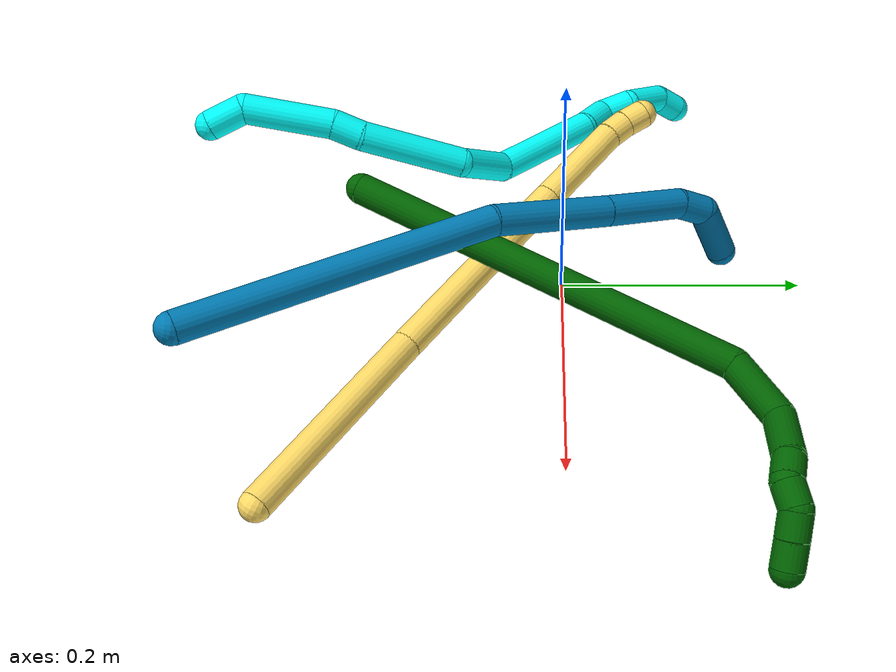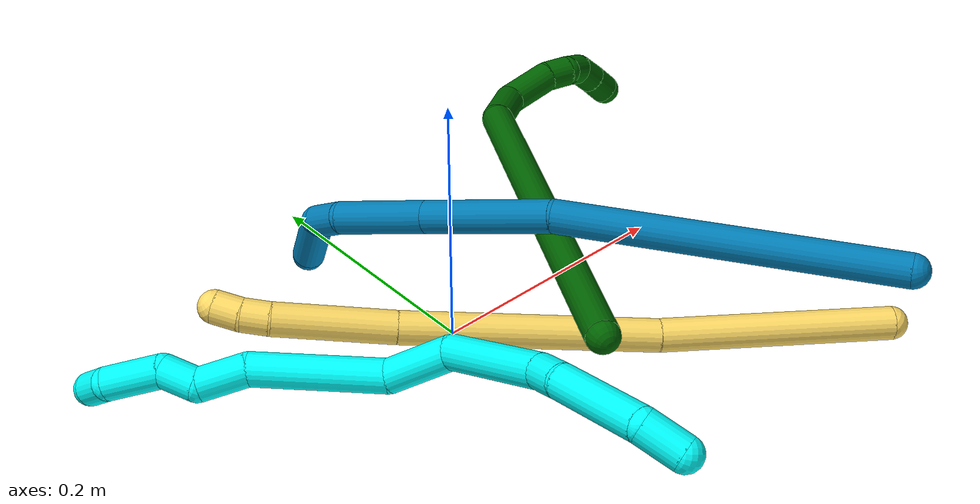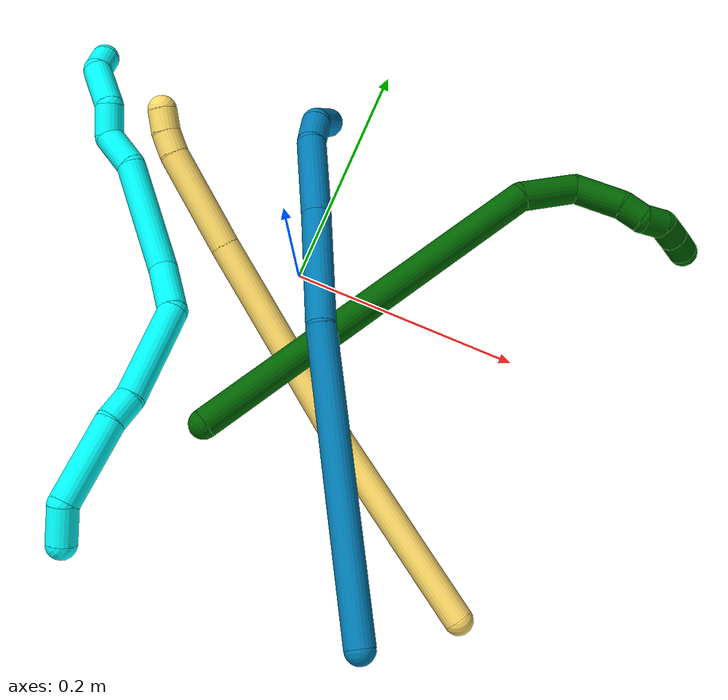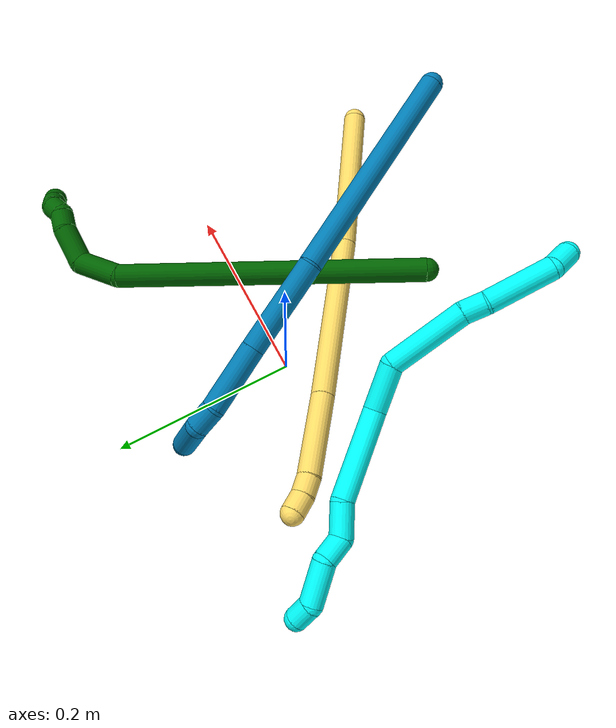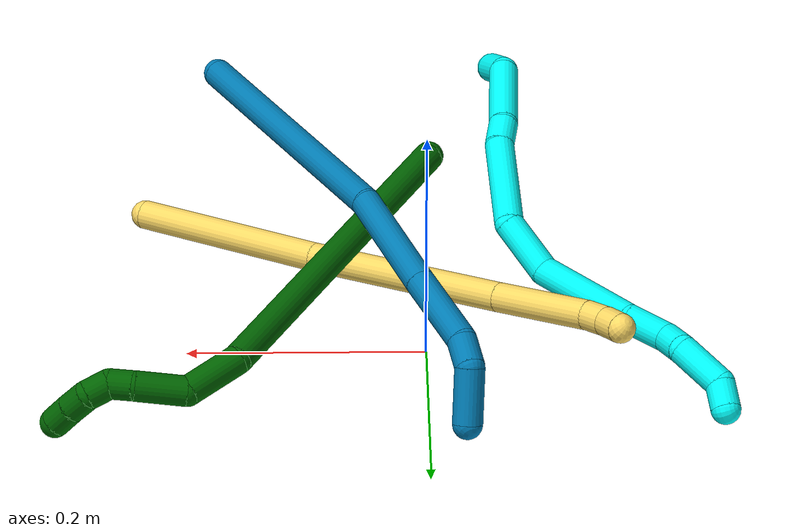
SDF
<sdf version="1.7">
 <world name="default">
  <model name="3">
   <static>0</static>
   <link name="3">
    <collision name="collision-cylinder-e_1_1_4">
     <pose>0.00138 0.011677 0.009816 -0.871752 0.090233 -0.042049</pose>
     <geometry><cylinder><radius>0.0125</radius><length>0.030634</length></cylinder></geometry>
     <surface>
      <friction><ode><mu>1.16</mu><mu2>1.16</mu2><slip1>0</slip1><slip2>0</slip2></ode></friction>
      <contact><ode><kp>1e+06</kp><kd>1</kd><max_vel>0</max_vel><min_depth>0.001</min_depth></ode></contact>
     </surface>
    </collision>
    <visual name="visual-cylinder-e_1_1_4">
     <pose>0.00138 0.011677 0.009816 -0.871752 0.090233 -0.042049</pose>
     <geometry><cylinder><radius>0.0125</radius><length>0.030634</length></cylinder></geometry>
     <material><ambient>0.003922 1 0.996078 1</ambient></material>
    </visual>
    <collision name="collision-cylinder-e_2_4_5">
     <pose>-0.007136 0.058299 0.025647 -1.40036 -0.272158 0.229728</pose>
     <geometry><cylinder><radius>0.0125</radius><length>0.073629</length></cylinder></geometry>
     <surface>
      <friction><ode><mu>1.16</mu><mu2>1.16</mu2><slip1>0</slip1><slip2>0</slip2></ode></friction>
      <contact><ode><kp>1e+06</kp><kd>1</kd><max_vel>0</max_vel><min_depth>0.001</min_depth></ode></contact>
     </surface>
    </collision>
    <visual name="visual-cylinder-e_2_4_5">
     <pose>-0.007136 0.058299 0.025647 -1.40036 -0.272158 0.229728</pose>
     <geometry><cylinder><radius>0.0125</radius><length>0.073629</length></cylinder></geometry>
     <material><ambient>0.003922 1 0.996078 1</ambient></material>
    </visual>
    <collision name="collision-cylinder-e_3_5_6">
     <pose>-0.021584 0.104878 0.031255 -1.60569 -0.37279 0.38571</pose>
     <geometry><cylinder><radius>0.0125</radius><length>0.024997</length></cylinder></geometry>
     <surface>
      <friction><ode><mu>1.16</mu><mu2>1.16</mu2><slip1>0</slip1><slip2>0</slip2></ode></friction>
      <contact><ode><kp>1e+06</kp><kd>1</kd><max_vel>0</max_vel><min_depth>0.001</min_depth></ode></contact>
     </surface>
    </collision>
    <visual name="visual-cylinder-e_3_5_6">
     <pose>-0.021584 0.104878 0.031255 -1.60569 -0.37279 0.38571</pose>
     <geometry><cylinder><radius>0.0125</radius><length>0.024997</length></cylinder></geometry>
     <material><ambient>0.003922 1 0.996078 1</ambient></material>
    </visual>
    <collision name="collision-cylinder-e_4_6_7">
     <pose>-0.04642 0.154828 0.038142 -1.38273 -0.479533 0.399272</pose>
     <geometry><cylinder><radius>0.0125</radius><length>0.087928</length></cylinder></geometry>
     <surface>
      <friction><ode><mu>1.16</mu><mu2>1.16</mu2><slip1>0</slip1><slip2>0</slip2></ode></friction>
      <contact><ode><kp>1e+06</kp><kd>1</kd><max_vel>0</max_vel><min_depth>0.001</min_depth></ode></contact>
     </surface>
    </collision>
    <visual name="visual-cylinder-e_4_6_7">
     <pose>-0.04642 0.154828 0.038142 -1.38273 -0.479533 0.399272</pose>
     <geometry><cylinder><radius>0.0125</radius><length>0.087928</length></cylinder></geometry>
     <material><ambient>0.003922 1 0.996078 1</ambient></material>
    </visual>
    <collision name="collision-cylinder-e_5_7_8">
     <pose>-0.086307 0.205142 0.057216 -0.794406 -0.861825 0.381032</pose>
     <geometry><cylinder><radius>0.0125</radius><length>0.051654</length></cylinder></geometry>
     <surface>
      <friction><ode><mu>1.16</mu><mu2>1.16</mu2><slip1>0</slip1><slip2>0</slip2></ode></friction>
      <contact><ode><kp>1e+06</kp><kd>1</kd><max_vel>0</max_vel><min_depth>0.001</min_depth></ode></contact>
     </surface>
    </collision>
    <visual name="visual-cylinder-e_5_7_8">
     <pose>-0.086307 0.205142 0.057216 -0.794406 -0.861825 0.381032</pose>
     <geometry><cylinder><radius>0.0125</radius><length>0.051654</length></cylinder></geometry>
     <material><ambient>0.003922 1 0.996078 1</ambient></material>
    </visual>
    <collision name="collision-cylinder-e_6_8_9">
     <pose>-0.124092 0.24296 0.10725 -0.593778 -0.375295 0.116051</pose>
     <geometry><cylinder><radius>0.0125</radius><length>0.099206</length></cylinder></geometry>
     <surface>
      <friction><ode><mu>1.16</mu><mu2>1.16</mu2><slip1>0</slip1><slip2>0</slip2></ode></friction>
      <contact><ode><kp>1e+06</kp><kd>1</kd><max_vel>0</max_vel><min_depth>0.001</min_depth></ode></contact>
     </surface>
    </collision>
    <visual name="visual-cylinder-e_6_8_9">
     <pose>-0.124092 0.24296 0.10725 -0.593778 -0.375295 0.116051</pose>
     <geometry><cylinder><radius>0.0125</radius><length>0.099206</length></cylinder></geometry>
     <material><ambient>0.003922 1 0.996078 1</ambient></material>
    </visual>
    <collision name="collision-cylinder-e_7_9_10">
     <pose>-0.152969 0.272827 0.159847 -0.27485 -0.622349 0.0889</pose>
     <geometry><cylinder><radius>0.0125</radius><length>0.036692</length></cylinder></geometry>
     <surface>
      <friction><ode><mu>1.16</mu><mu2>1.16</mu2><slip1>0</slip1><slip2>0</slip2></ode></friction>
      <contact><ode><kp>1e+06</kp><kd>1</kd><max_vel>0</max_vel><min_depth>0.001</min_depth></ode></contact>
     </surface>
    </collision>
    <visual name="visual-cylinder-e_7_9_10">
     <pose>-0.152969 0.272827 0.159847 -0.27485 -0.622349 0.0889</pose>
     <geometry><cylinder><radius>0.0125</radius><length>0.036692</length></cylinder></geometry>
     <material><ambient>0.003922 1 0.996078 1</ambient></material>
    </visual>
    <collision name="collision-cylinder-e_8_10_11">
     <pose>-0.165557 0.287205 0.183178 -0.855107 -0.13744 0.062705</pose>
     <geometry><cylinder><radius>0.0125</radius><length>0.027644</length></cylinder></geometry>
     <surface>
      <friction><ode><mu>1.16</mu><mu2>1.16</mu2><slip1>0</slip1><slip2>0</slip2></ode></friction>
      <contact><ode><kp>1e+06</kp><kd>1</kd><max_vel>0</max_vel><min_depth>0.001</min_depth></ode></contact>
     </surface>
    </collision>
    <visual name="visual-cylinder-e_8_10_11">
     <pose>-0.165557 0.287205 0.183178 -0.855107 -0.13744 0.062705</pose>
     <geometry><cylinder><radius>0.0125</radius><length>0.027644</length></cylinder></geometry>
     <material><ambient>0.003922 1 0.996078 1</ambient></material>
    </visual>
    <collision name="collision-cylinder-e_9_11_12">
     <pose>-0.181473 0.307749 0.206148 -0.630641 -0.680632 0.229994</pose>
     <geometry><cylinder><radius>0.0125</radius><length>0.044566</length></cylinder></geometry>
     <surface>
      <friction><ode><mu>1.16</mu><mu2>1.16</mu2><slip1>0</slip1><slip2>0</slip2></ode></friction>
      <contact><ode><kp>1e+06</kp><kd>1</kd><max_vel>0</max_vel><min_depth>0.001</min_depth></ode></contact>
     </surface>
    </collision>
    <visual name="visual-cylinder-e_9_11_12">
     <pose>-0.181473 0.307749 0.206148 -0.630641 -0.680632 0.229994</pose>
     <geometry><cylinder><radius>0.0125</radius><length>0.044566</length></cylinder></geometry>
     <material><ambient>0.003922 1 0.996078 1</ambient></material>
    </visual>
    <collision name="collision-cylinder-e_10_12_2">
     <pose>-0.203686 0.325961 0.221452 -1.40761 -0.790422 0.680629</pose>
     <geometry><cylinder><radius>0.0125</radius><length>0.02305</length></cylinder></geometry>
     <surface>
      <friction><ode><mu>1.16</mu><mu2>1.16</mu2><slip1>0</slip1><slip2>0</slip2></ode></friction>
      <contact><ode><kp>1e+06</kp><kd>1</kd><max_vel>0</max_vel><min_depth>0.001</min_depth></ode></contact>
     </surface>
    </collision>
    <visual name="visual-cylinder-e_10_12_2">
     <pose>-0.203686 0.325961 0.221452 -1.40761 -0.790422 0.680629</pose>
     <geometry><cylinder><radius>0.0125</radius><length>0.02305</length></cylinder></geometry>
     <material><ambient>0.003922 1 0.996078 1</ambient></material>
    </visual>
    <collision name="collision-sphere-2">
     <pose>-0.211876 0.333962 0.22277 0 -0 0</pose>
     <geometry><sphere><radius>0.0125</radius></sphere></geometry>
     <surface>
      <friction><ode><mu>1.16</mu><mu2>1.16</mu2><slip1>0</slip1><slip2>0</slip2></ode></friction>
      <contact><ode><kp>1e+06</kp><kd>1</kd><max_vel>0</max_vel><min_depth>0.001</min_depth></ode></contact>
     </surface>
    </collision>
    <visual name="visual-sphere-2">
     <pose>-0.211876 0.333962 0.22277 0 -0 0</pose>
     <geometry><sphere><radius>0.0125</radius></sphere></geometry>
     <material><ambient>0.003922 1 0.996078 1</ambient></material>
    </visual>
    <collision name="collision-sphere-12">
     <pose>-0.195495 0.31796 0.220135 0 -0 0</pose>
     <geometry><sphere><radius>0.0125</radius></sphere></geometry>
     <surface>
      <friction><ode><mu>1.16</mu><mu2>1.16</mu2><slip1>0</slip1><slip2>0</slip2></ode></friction>
      <contact><ode><kp>1e+06</kp><kd>1</kd><max_vel>0</max_vel><min_depth>0.001</min_depth></ode></contact>
     </surface>
    </collision>
    <visual name="visual-sphere-12">
     <pose>-0.195495 0.31796 0.220135 0 -0 0</pose>
     <geometry><sphere><radius>0.0125</radius></sphere></geometry>
     <material><ambient>0.003922 1 0.996078 1</ambient></material>
    </visual>
    <collision name="collision-sphere-11">
     <pose>-0.167451 0.297537 0.192162 0 -0 0</pose>
     <geometry><sphere><radius>0.0125</radius></sphere></geometry>
     <surface>
      <friction><ode><mu>1.16</mu><mu2>1.16</mu2><slip1>0</slip1><slip2>0</slip2></ode></friction>
      <contact><ode><kp>1e+06</kp><kd>1</kd><max_vel>0</max_vel><min_depth>0.001</min_depth></ode></contact>
     </surface>
    </collision>
    <visual name="visual-sphere-11">
     <pose>-0.167451 0.297537 0.192162 0 -0 0</pose>
     <geometry><sphere><radius>0.0125</radius></sphere></geometry>
     <material><ambient>0.003922 1 0.996078 1</ambient></material>
    </visual>
    <collision name="collision-sphere-10">
     <pose>-0.163663 0.276872 0.174194 0 -0 0</pose>
     <geometry><sphere><radius>0.0125</radius></sphere></geometry>
     <surface>
      <friction><ode><mu>1.16</mu><mu2>1.16</mu2><slip1>0</slip1><slip2>0</slip2></ode></friction>
      <contact><ode><kp>1e+06</kp><kd>1</kd><max_vel>0</max_vel><min_depth>0.001</min_depth></ode></contact>
     </surface>
    </collision>
    <visual name="visual-sphere-10">
     <pose>-0.163663 0.276872 0.174194 0 -0 0</pose>
     <geometry><sphere><radius>0.0125</radius></sphere></geometry>
     <material><ambient>0.003922 1 0.996078 1</ambient></material>
    </visual>
    <collision name="collision-sphere-9">
     <pose>-0.142274 0.268781 0.1455 0 -0 0</pose>
     <geometry><sphere><radius>0.0125</radius></sphere></geometry>
     <surface>
      <friction><ode><mu>1.16</mu><mu2>1.16</mu2><slip1>0</slip1><slip2>0</slip2></ode></friction>
      <contact><ode><kp>1e+06</kp><kd>1</kd><max_vel>0</max_vel><min_depth>0.001</min_depth></ode></contact>
     </surface>
    </collision>
    <visual name="visual-sphere-9">
     <pose>-0.142274 0.268781 0.1455 0 -0 0</pose>
     <geometry><sphere><radius>0.0125</radius></sphere></geometry>
     <material><ambient>0.003922 1 0.996078 1</ambient></material>
    </visual>
    <collision name="collision-sphere-4">
     <pose>0.00276 0.023353 0.019632 0 -0 0</pose>
     <geometry><sphere><radius>0.0125</radius></sphere></geometry>
     <surface>
      <friction><ode><mu>1.16</mu><mu2>1.16</mu2><slip1>0</slip1><slip2>0</slip2></ode></friction>
      <contact><ode><kp>1e+06</kp><kd>1</kd><max_vel>0</max_vel><min_depth>0.001</min_depth></ode></contact>
     </surface>
    </collision>
    <visual name="visual-sphere-4">
     <pose>0.00276 0.023353 0.019632 0 -0 0</pose>
     <geometry><sphere><radius>0.0125</radius></sphere></geometry>
     <material><ambient>0.003922 1 0.996078 1</ambient></material>
    </visual>
    <collision name="collision-sphere-1">
     <geometry><sphere><radius>0.0125</radius></sphere></geometry>
     <surface>
      <friction><ode><mu>1.16</mu><mu2>1.16</mu2><slip1>0</slip1><slip2>0</slip2></ode></friction>
      <contact><ode><kp>1e+06</kp><kd>1</kd><max_vel>0</max_vel><min_depth>0.001</min_depth></ode></contact>
     </surface>
    </collision>
    <visual name="visual-sphere-1">
     <geometry><sphere><radius>0.0125</radius></sphere></geometry>
     <material><ambient>0.003922 1 0.996078 1</ambient></material>
    </visual>
    <collision name="collision-sphere-8">
     <pose>-0.10591 0.217139 0.068999 0 -0 0</pose>
     <geometry><sphere><radius>0.0125</radius></sphere></geometry>
     <surface>
      <friction><ode><mu>1.16</mu><mu2>1.16</mu2><slip1>0</slip1><slip2>0</slip2></ode></friction>
      <contact><ode><kp>1e+06</kp><kd>1</kd><max_vel>0</max_vel><min_depth>0.001</min_depth></ode></contact>
     </surface>
    </collision>
    <visual name="visual-sphere-8">
     <pose>-0.10591 0.217139 0.068999 0 -0 0</pose>
     <geometry><sphere><radius>0.0125</radius></sphere></geometry>
     <material><ambient>0.003922 1 0.996078 1</ambient></material>
    </visual>
    <collision name="collision-sphere-5">
     <pose>-0.017032 0.093245 0.031661 0 -0 0</pose>
     <geometry><sphere><radius>0.0125</radius></sphere></geometry>
     <surface>
      <friction><ode><mu>1.16</mu><mu2>1.16</mu2><slip1>0</slip1><slip2>0</slip2></ode></friction>
      <contact><ode><kp>1e+06</kp><kd>1</kd><max_vel>0</max_vel><min_depth>0.001</min_depth></ode></contact>
     </surface>
    </collision>
    <visual name="visual-sphere-5">
     <pose>-0.017032 0.093245 0.031661 0 -0 0</pose>
     <geometry><sphere><radius>0.0125</radius></sphere></geometry>
     <material><ambient>0.003922 1 0.996078 1</ambient></material>
    </visual>
    <collision name="collision-sphere-6">
     <pose>-0.026136 0.116511 0.030849 0 -0 0</pose>
     <geometry><sphere><radius>0.0125</radius></sphere></geometry>
     <surface>
      <friction><ode><mu>1.16</mu><mu2>1.16</mu2><slip1>0</slip1><slip2>0</slip2></ode></friction>
      <contact><ode><kp>1e+06</kp><kd>1</kd><max_vel>0</max_vel><min_depth>0.001</min_depth></ode></contact>
     </surface>
    </collision>
    <visual name="visual-sphere-6">
     <pose>-0.026136 0.116511 0.030849 0 -0 0</pose>
     <geometry><sphere><radius>0.0125</radius></sphere></geometry>
     <material><ambient>0.003922 1 0.996078 1</ambient></material>
    </visual>
    <collision name="collision-sphere-7">
     <pose>-0.066703 0.193146 0.045434 0 -0 0</pose>
     <geometry><sphere><radius>0.0125</radius></sphere></geometry>
     <surface>
      <friction><ode><mu>1.16</mu><mu2>1.16</mu2><slip1>0</slip1><slip2>0</slip2></ode></friction>
      <contact><ode><kp>1e+06</kp><kd>1</kd><max_vel>0</max_vel><min_depth>0.001</min_depth></ode></contact>
     </surface>
    </collision>
    <visual name="visual-sphere-7">
     <pose>-0.066703 0.193146 0.045434 0 -0 0</pose>
     <geometry><sphere><radius>0.0125</radius></sphere></geometry>
     <material><ambient>0.003922 1 0.996078 1</ambient></material>
    </visual>
    <inertial>
     <pose>-0.08969 0.189527 0.09028 0 -0 0</pose>
     <mass>0.5</mass>
     <inertia>
      <ixx>0.000219</ixx>
      <ixy>0</ixy>
      <ixz>0</ixz>
      <iyy>0.000203</iyy>
      <iyz>0</iyz>
      <izz>-4.3e-05</izz>
     </inertia>
    </inertial>
   </link>
   <pose>-0.062819 -0.288502 0.120186 -0.020905 -1.16211 -0.27887</pose>
  </model>
  <model name="5">
   <static>0</static>
   <link name="5">
    <collision name="collision-cylinder-e_1_1_4">
     <pose>-0.047016 0.041201 -0.063115 -2.56326 -0.557722 1.53249</pose>
     <geometry><cylinder><radius>0.0125</radius><length>0.177667</length></cylinder></geometry>
     <surface>
      <friction><ode><mu>1.16</mu><mu2>1.16</mu2><slip1>0</slip1><slip2>0</slip2></ode></friction>
      <contact><ode><kp>1e+06</kp><kd>1</kd><max_vel>0</max_vel><min_depth>0.001</min_depth></ode></contact>
     </surface>
    </collision>
    <visual name="visual-cylinder-e_1_1_4">
     <pose>-0.047016 0.041201 -0.063115 -2.56326 -0.557722 1.53249</pose>
     <geometry><cylinder><radius>0.0125</radius><length>0.177667</length></cylinder></geometry>
     <material><ambient>1 0.858824 0.4 1</ambient></material>
    </visual>
    <collision name="collision-cylinder-e_2_4_5">
     <pose>-0.143443 0.12067 -0.198983 -2.65736 -0.541214 1.68681</pose>
     <geometry><cylinder><radius>0.0125</radius><length>0.191823</length></cylinder></geometry>
     <surface>
      <friction><ode><mu>1.16</mu><mu2>1.16</mu2><slip1>0</slip1><slip2>0</slip2></ode></friction>
      <contact><ode><kp>1e+06</kp><kd>1</kd><max_vel>0</max_vel><min_depth>0.001</min_depth></ode></contact>
     </surface>
    </collision>
    <visual name="visual-cylinder-e_2_4_5">
     <pose>-0.143443 0.12067 -0.198983 -2.65736 -0.541214 1.68681</pose>
     <geometry><cylinder><radius>0.0125</radius><length>0.191823</length></cylinder></geometry>
     <material><ambient>1 0.858824 0.4 1</ambient></material>
    </visual>
    <collision name="collision-cylinder-e_3_5_6">
     <pose>-0.215719 0.175521 -0.306708 -2.69881 -0.53359 1.76373</pose>
     <geometry><cylinder><radius>0.0125</radius><length>0.089906</length></cylinder></geometry>
     <surface>
      <friction><ode><mu>1.16</mu><mu2>1.16</mu2><slip1>0</slip1><slip2>0</slip2></ode></friction>
      <contact><ode><kp>1e+06</kp><kd>1</kd><max_vel>0</max_vel><min_depth>0.001</min_depth></ode></contact>
     </surface>
    </collision>
    <visual name="visual-cylinder-e_3_5_6">
     <pose>-0.215719 0.175521 -0.306708 -2.69881 -0.53359 1.76373</pose>
     <geometry><cylinder><radius>0.0125</radius><length>0.089906</length></cylinder></geometry>
     <material><ambient>1 0.858824 0.4 1</ambient></material>
    </visual>
    <collision name="collision-cylinder-e_4_6_7">
     <pose>-0.244637 0.194617 -0.349448 -2.82873 -0.638009 2.25058</pose>
     <geometry><cylinder><radius>0.0125</radius><length>0.02033</length></cylinder></geometry>
     <surface>
      <friction><ode><mu>1.16</mu><mu2>1.16</mu2><slip1>0</slip1><slip2>0</slip2></ode></friction>
      <contact><ode><kp>1e+06</kp><kd>1</kd><max_vel>0</max_vel><min_depth>0.001</min_depth></ode></contact>
     </surface>
    </collision>
    <visual name="visual-cylinder-e_4_6_7">
     <pose>-0.244637 0.194617 -0.349448 -2.82873 -0.638009 2.25058</pose>
     <geometry><cylinder><radius>0.0125</radius><length>0.02033</length></cylinder></geometry>
     <material><ambient>1 0.858824 0.4 1</ambient></material>
    </visual>
    <collision name="collision-cylinder-e_5_7_2">
     <pose>-0.257181 0.197772 -0.364978 -3.05913 -0.694738 2.91469</pose>
     <geometry><cylinder><radius>0.0125</radius><length>0.020274</length></cylinder></geometry>
     <surface>
      <friction><ode><mu>1.16</mu><mu2>1.16</mu2><slip1>0</slip1><slip2>0</slip2></ode></friction>
      <contact><ode><kp>1e+06</kp><kd>1</kd><max_vel>0</max_vel><min_depth>0.001</min_depth></ode></contact>
     </surface>
    </collision>
    <visual name="visual-cylinder-e_5_7_2">
     <pose>-0.257181 0.197772 -0.364978 -3.05913 -0.694738 2.91469</pose>
     <geometry><cylinder><radius>0.0125</radius><length>0.020274</length></cylinder></geometry>
     <material><ambient>1 0.858824 0.4 1</ambient></material>
    </visual>
    <collision name="collision-sphere-2">
     <pose>-0.26367 0.198413 -0.372739 0 -0 0</pose>
     <geometry><sphere><radius>0.0125</radius></sphere></geometry>
     <surface>
      <friction><ode><mu>1.16</mu><mu2>1.16</mu2><slip1>0</slip1><slip2>0</slip2></ode></friction>
      <contact><ode><kp>1e+06</kp><kd>1</kd><max_vel>0</max_vel><min_depth>0.001</min_depth></ode></contact>
     </surface>
    </collision>
    <visual name="visual-sphere-2">
     <pose>-0.26367 0.198413 -0.372739 0 -0 0</pose>
     <geometry><sphere><radius>0.0125</radius></sphere></geometry>
     <material><ambient>1 0.858824 0.4 1</ambient></material>
    </visual>
    <collision name="collision-sphere-7">
     <pose>-0.250691 0.19713 -0.357217 0 -0 0</pose>
     <geometry><sphere><radius>0.0125</radius></sphere></geometry>
     <surface>
      <friction><ode><mu>1.16</mu><mu2>1.16</mu2><slip1>0</slip1><slip2>0</slip2></ode></friction>
      <contact><ode><kp>1e+06</kp><kd>1</kd><max_vel>0</max_vel><min_depth>0.001</min_depth></ode></contact>
     </surface>
    </collision>
    <visual name="visual-sphere-7">
     <pose>-0.250691 0.19713 -0.357217 0 -0 0</pose>
     <geometry><sphere><radius>0.0125</radius></sphere></geometry>
     <material><ambient>1 0.858824 0.4 1</ambient></material>
    </visual>
    <collision name="collision-sphere-6">
     <pose>-0.238583 0.192104 -0.341679 0 -0 0</pose>
     <geometry><sphere><radius>0.0125</radius></sphere></geometry>
     <surface>
      <friction><ode><mu>1.16</mu><mu2>1.16</mu2><slip1>0</slip1><slip2>0</slip2></ode></friction>
      <contact><ode><kp>1e+06</kp><kd>1</kd><max_vel>0</max_vel><min_depth>0.001</min_depth></ode></contact>
     </surface>
    </collision>
    <visual name="visual-sphere-6">
     <pose>-0.238583 0.192104 -0.341679 0 -0 0</pose>
     <geometry><sphere><radius>0.0125</radius></sphere></geometry>
     <material><ambient>1 0.858824 0.4 1</ambient></material>
    </visual>
    <collision name="collision-sphere-5">
     <pose>-0.192854 0.158938 -0.271736 0 -0 0</pose>
     <geometry><sphere><radius>0.0125</radius></sphere></geometry>
     <surface>
      <friction><ode><mu>1.16</mu><mu2>1.16</mu2><slip1>0</slip1><slip2>0</slip2></ode></friction>
      <contact><ode><kp>1e+06</kp><kd>1</kd><max_vel>0</max_vel><min_depth>0.001</min_depth></ode></contact>
     </surface>
    </collision>
    <visual name="visual-sphere-5">
     <pose>-0.192854 0.158938 -0.271736 0 -0 0</pose>
     <geometry><sphere><radius>0.0125</radius></sphere></geometry>
     <material><ambient>1 0.858824 0.4 1</ambient></material>
    </visual>
    <collision name="collision-sphere-1">
     <geometry><sphere><radius>0.0125</radius></sphere></geometry>
     <surface>
      <friction><ode><mu>1.16</mu><mu2>1.16</mu2><slip1>0</slip1><slip2>0</slip2></ode></friction>
      <contact><ode><kp>1e+06</kp><kd>1</kd><max_vel>0</max_vel><min_depth>0.001</min_depth></ode></contact>
     </surface>
    </collision>
    <visual name="visual-sphere-1">
     <geometry><sphere><radius>0.0125</radius></sphere></geometry>
     <material><ambient>1 0.858824 0.4 1</ambient></material>
    </visual>
    <collision name="collision-sphere-4">
     <pose>-0.094031 0.082401 -0.126229 0 -0 0</pose>
     <geometry><sphere><radius>0.0125</radius></sphere></geometry>
     <surface>
      <friction><ode><mu>1.16</mu><mu2>1.16</mu2><slip1>0</slip1><slip2>0</slip2></ode></friction>
      <contact><ode><kp>1e+06</kp><kd>1</kd><max_vel>0</max_vel><min_depth>0.001</min_depth></ode></contact>
     </surface>
    </collision>
    <visual name="visual-sphere-4">
     <pose>-0.094031 0.082401 -0.126229 0 -0 0</pose>
     <geometry><sphere><radius>0.0125</radius></sphere></geometry>
     <material><ambient>1 0.858824 0.4 1</ambient></material>
    </visual>
    <inertial>
     <pose>-0.130901 0.108428 -0.182923 0 -0 0</pose>
     <mass>0.5</mass>
     <inertia>
      <ixx>0.000888</ixx>
      <ixy>0</ixy>
      <ixz>0</ixz>
      <iyy>0.001332</iyy>
      <iyz>0</iyz>
      <izz>8.1e-05</izz>
     </inertia>
    </inertial>
   </link>
   <pose>0.241311 -0.220207 0.012483 -2.74518 -0.651493 -1.35914</pose>
  </model>
  <model name="6">
   <static>0</static>
   <link name="6">
    <collision name="collision-cylinder-e_1_1_4">
     <pose>0.015577 0.039483 0.157509 -0.245611 0.095634 -0.011813</pose>
     <geometry><cylinder><radius>0.0125</radius><length>0.326256</length></cylinder></geometry>
     <surface>
      <friction><ode><mu>1.16</mu><mu2>1.16</mu2><slip1>0</slip1><slip2>0</slip2></ode></friction>
      <contact><ode><kp>1e+06</kp><kd>1</kd><max_vel>0</max_vel><min_depth>0.001</min_depth></ode></contact>
     </surface>
    </collision>
    <visual name="visual-cylinder-e_1_1_4">
     <pose>0.015577 0.039483 0.157509 -0.245611 0.095634 -0.011813</pose>
     <geometry><cylinder><radius>0.0125</radius><length>0.326256</length></cylinder></geometry>
     <material><ambient>0 0.392157 0.003922 1</ambient></material>
    </visual>
    <collision name="collision-cylinder-e_2_4_5">
     <pose>0.03914 0.093265 0.334298 -0.63812 0.321199 -0.106927</pose>
     <geometry><cylinder><radius>0.0125</radius><length>0.050594</length></cylinder></geometry>
     <surface>
      <friction><ode><mu>1.16</mu><mu2>1.16</mu2><slip1>0</slip1><slip2>0</slip2></ode></friction>
      <contact><ode><kp>1e+06</kp><kd>1</kd><max_vel>0</max_vel><min_depth>0.001</min_depth></ode></contact>
     </surface>
    </collision>
    <visual name="visual-cylinder-e_2_4_5">
     <pose>0.03914 0.093265 0.334298 -0.63812 0.321199 -0.106927</pose>
     <geometry><cylinder><radius>0.0125</radius><length>0.050594</length></cylinder></geometry>
     <material><ambient>0 0.392157 0.003922 1</ambient></material>
    </visual>
    <collision name="collision-cylinder-e_3_5_6">
     <pose>0.064879 0.117532 0.359795 -1.01318 0.986151 -0.579552</pose>
     <geometry><cylinder><radius>0.0125</radius><length>0.042576</length></cylinder></geometry>
     <surface>
      <friction><ode><mu>1.16</mu><mu2>1.16</mu2><slip1>0</slip1><slip2>0</slip2></ode></friction>
      <contact><ode><kp>1e+06</kp><kd>1</kd><max_vel>0</max_vel><min_depth>0.001</min_depth></ode></contact>
     </surface>
    </collision>
    <visual name="visual-cylinder-e_3_5_6">
     <pose>0.064879 0.117532 0.359795 -1.01318 0.986151 -0.579552</pose>
     <geometry><cylinder><radius>0.0125</radius><length>0.042576</length></cylinder></geometry>
     <material><ambient>0 0.392157 0.003922 1</ambient></material>
    </visual>
    <collision name="collision-cylinder-e_4_6_7">
     <pose>0.090656 0.133783 0.366766 -1.45142 0.903239 -0.812785</pose>
     <geometry><cylinder><radius>0.0125</radius><length>0.020437</length></cylinder></geometry>
     <surface>
      <friction><ode><mu>1.16</mu><mu2>1.16</mu2><slip1>0</slip1><slip2>0</slip2></ode></friction>
      <contact><ode><kp>1e+06</kp><kd>1</kd><max_vel>0</max_vel><min_depth>0.001</min_depth></ode></contact>
     </surface>
    </collision>
    <visual name="visual-cylinder-e_4_6_7">
     <pose>0.090656 0.133783 0.366766 -1.45142 0.903239 -0.812785</pose>
     <geometry><cylinder><radius>0.0125</radius><length>0.020437</length></cylinder></geometry>
     <material><ambient>0 0.392157 0.003922 1</ambient></material>
    </visual>
    <collision name="collision-cylinder-e_5_7_8">
     <pose>0.102682 0.147954 0.372229 -1.03265 0.410601 -0.235332</pose>
     <geometry><cylinder><radius>0.0125</radius><length>0.020045</length></cylinder></geometry>
     <surface>
      <friction><ode><mu>1.16</mu><mu2>1.16</mu2><slip1>0</slip1><slip2>0</slip2></ode></friction>
      <contact><ode><kp>1e+06</kp><kd>1</kd><max_vel>0</max_vel><min_depth>0.001</min_depth></ode></contact>
     </surface>
    </collision>
    <visual name="visual-cylinder-e_5_7_8">
     <pose>0.102682 0.147954 0.372229 -1.03265 0.410601 -0.235332</pose>
     <geometry><cylinder><radius>0.0125</radius><length>0.020045</length></cylinder></geometry>
     <material><ambient>0 0.392157 0.003922 1</ambient></material>
    </visual>
    <collision name="collision-cylinder-e_6_8_9">
     <pose>0.108171 0.165739 0.377244 -1.53994 0.149264 -0.144744</pose>
     <geometry><cylinder><radius>0.0125</radius><length>0.02002</length></cylinder></geometry>
     <surface>
      <friction><ode><mu>1.16</mu><mu2>1.16</mu2><slip1>0</slip1><slip2>0</slip2></ode></friction>
      <contact><ode><kp>1e+06</kp><kd>1</kd><max_vel>0</max_vel><min_depth>0.001</min_depth></ode></contact>
     </surface>
    </collision>
    <visual name="visual-cylinder-e_6_8_9">
     <pose>0.108171 0.165739 0.377244 -1.53994 0.149264 -0.144744</pose>
     <geometry><cylinder><radius>0.0125</radius><length>0.02002</length></cylinder></geometry>
     <material><ambient>0 0.392157 0.003922 1</ambient></material>
    </visual>
    <collision name="collision-cylinder-e_7_9_2">
     <pose>0.110719 0.185612 0.377661 -1.55964 0.1058 -0.104628</pose>
     <geometry><cylinder><radius>0.0125</radius><length>0.020072</length></cylinder></geometry>
     <surface>
      <friction><ode><mu>1.16</mu><mu2>1.16</mu2><slip1>0</slip1><slip2>0</slip2></ode></friction>
      <contact><ode><kp>1e+06</kp><kd>1</kd><max_vel>0</max_vel><min_depth>0.001</min_depth></ode></contact>
     </surface>
    </collision>
    <visual name="visual-cylinder-e_7_9_2">
     <pose>0.110719 0.185612 0.377661 -1.55964 0.1058 -0.104628</pose>
     <geometry><cylinder><radius>0.0125</radius><length>0.020072</length></cylinder></geometry>
     <material><ambient>0 0.392157 0.003922 1</ambient></material>
    </visual>
    <collision name="collision-sphere-2">
     <pose>0.111779 0.195591 0.377773 0 -0 0</pose>
     <geometry><sphere><radius>0.0125</radius></sphere></geometry>
     <surface>
      <friction><ode><mu>1.16</mu><mu2>1.16</mu2><slip1>0</slip1><slip2>0</slip2></ode></friction>
      <contact><ode><kp>1e+06</kp><kd>1</kd><max_vel>0</max_vel><min_depth>0.001</min_depth></ode></contact>
     </surface>
    </collision>
    <visual name="visual-sphere-2">
     <pose>0.111779 0.195591 0.377773 0 -0 0</pose>
     <geometry><sphere><radius>0.0125</radius></sphere></geometry>
     <material><ambient>0 0.392157 0.003922 1</ambient></material>
    </visual>
    <collision name="collision-sphere-9">
     <pose>0.109659 0.175633 0.37755 0 -0 0</pose>
     <geometry><sphere><radius>0.0125</radius></sphere></geometry>
     <surface>
      <friction><ode><mu>1.16</mu><mu2>1.16</mu2><slip1>0</slip1><slip2>0</slip2></ode></friction>
      <contact><ode><kp>1e+06</kp><kd>1</kd><max_vel>0</max_vel><min_depth>0.001</min_depth></ode></contact>
     </surface>
    </collision>
    <visual name="visual-sphere-9">
     <pose>0.109659 0.175633 0.37755 0 -0 0</pose>
     <geometry><sphere><radius>0.0125</radius></sphere></geometry>
     <material><ambient>0 0.392157 0.003922 1</ambient></material>
    </visual>
    <collision name="collision-sphere-4">
     <pose>0.031153 0.078966 0.315018 0 -0 0</pose>
     <geometry><sphere><radius>0.0125</radius></sphere></geometry>
     <surface>
      <friction><ode><mu>1.16</mu><mu2>1.16</mu2><slip1>0</slip1><slip2>0</slip2></ode></friction>
      <contact><ode><kp>1e+06</kp><kd>1</kd><max_vel>0</max_vel><min_depth>0.001</min_depth></ode></contact>
     </surface>
    </collision>
    <visual name="visual-sphere-4">
     <pose>0.031153 0.078966 0.315018 0 -0 0</pose>
     <geometry><sphere><radius>0.0125</radius></sphere></geometry>
     <material><ambient>0 0.392157 0.003922 1</ambient></material>
    </visual>
    <collision name="collision-sphere-1">
     <geometry><sphere><radius>0.0125</radius></sphere></geometry>
     <surface>
      <friction><ode><mu>1.16</mu><mu2>1.16</mu2><slip1>0</slip1><slip2>0</slip2></ode></friction>
      <contact><ode><kp>1e+06</kp><kd>1</kd><max_vel>0</max_vel><min_depth>0.001</min_depth></ode></contact>
     </surface>
    </collision>
    <visual name="visual-sphere-1">
     <geometry><sphere><radius>0.0125</radius></sphere></geometry>
     <material><ambient>0 0.392157 0.003922 1</ambient></material>
    </visual>
    <collision name="collision-sphere-8">
     <pose>0.106682 0.155845 0.376939 0 -0 0</pose>
     <geometry><sphere><radius>0.0125</radius></sphere></geometry>
     <surface>
      <friction><ode><mu>1.16</mu><mu2>1.16</mu2><slip1>0</slip1><slip2>0</slip2></ode></friction>
      <contact><ode><kp>1e+06</kp><kd>1</kd><max_vel>0</max_vel><min_depth>0.001</min_depth></ode></contact>
     </surface>
    </collision>
    <visual name="visual-sphere-8">
     <pose>0.106682 0.155845 0.376939 0 -0 0</pose>
     <geometry><sphere><radius>0.0125</radius></sphere></geometry>
     <material><ambient>0 0.392157 0.003922 1</ambient></material>
    </visual>
    <collision name="collision-sphere-5">
     <pose>0.047126 0.107563 0.353578 0 -0 0</pose>
     <geometry><sphere><radius>0.0125</radius></sphere></geometry>
     <surface>
      <friction><ode><mu>1.16</mu><mu2>1.16</mu2><slip1>0</slip1><slip2>0</slip2></ode></friction>
      <contact><ode><kp>1e+06</kp><kd>1</kd><max_vel>0</max_vel><min_depth>0.001</min_depth></ode></contact>
     </surface>
    </collision>
    <visual name="visual-sphere-5">
     <pose>0.047126 0.107563 0.353578 0 -0 0</pose>
     <geometry><sphere><radius>0.0125</radius></sphere></geometry>
     <material><ambient>0 0.392157 0.003922 1</ambient></material>
    </visual>
    <collision name="collision-sphere-6">
     <pose>0.082631 0.127502 0.366012 0 -0 0</pose>
     <geometry><sphere><radius>0.0125</radius></sphere></geometry>
     <surface>
      <friction><ode><mu>1.16</mu><mu2>1.16</mu2><slip1>0</slip1><slip2>0</slip2></ode></friction>
      <contact><ode><kp>1e+06</kp><kd>1</kd><max_vel>0</max_vel><min_depth>0.001</min_depth></ode></contact>
     </surface>
    </collision>
    <visual name="visual-sphere-6">
     <pose>0.082631 0.127502 0.366012 0 -0 0</pose>
     <geometry><sphere><radius>0.0125</radius></sphere></geometry>
     <material><ambient>0 0.392157 0.003922 1</ambient></material>
    </visual>
    <collision name="collision-sphere-7">
     <pose>0.098681 0.140064 0.367519 0 -0 0</pose>
     <geometry><sphere><radius>0.0125</radius></sphere></geometry>
     <surface>
      <friction><ode><mu>1.16</mu><mu2>1.16</mu2><slip1>0</slip1><slip2>0</slip2></ode></friction>
      <contact><ode><kp>1e+06</kp><kd>1</kd><max_vel>0</max_vel><min_depth>0.001</min_depth></ode></contact>
     </surface>
    </collision>
    <visual name="visual-sphere-7">
     <pose>0.098681 0.140064 0.367519 0 -0 0</pose>
     <geometry><sphere><radius>0.0125</radius></sphere></geometry>
     <material><ambient>0 0.392157 0.003922 1</ambient></material>
    </visual>
    <inertial>
     <pose>0.036247 0.070696 0.227421 0 -0 0</pose>
     <mass>0.5</mass>
     <inertia>
      <ixx>0.002883</ixx>
      <ixy>0</ixy>
      <ixz>0</ixz>
      <iyy>0.002815</iyy>
      <iyz>0</iyz>
      <izz>-0.00098</izz>
     </inertia>
    </inertial>
   </link>
   <pose>-0.005098 -0.160896 0.100146 -1.52874 -0.635392 -0.314479</pose>
  </model>
  <model name="9">
   <static>0</static>
   <link name="9">
    <collision name="collision-cylinder-e_1_1_4">
     <pose>0.0442 0.02717 -0.114863 -2.90932 0.35831 -1.99702</pose>
     <geometry><cylinder><radius>0.0125</radius><length>0.252073</length></cylinder></geometry>
     <surface>
      <friction><ode><mu>1.16</mu><mu2>1.16</mu2><slip1>0</slip1><slip2>0</slip2></ode></friction>
      <contact><ode><kp>1e+06</kp><kd>1</kd><max_vel>0</max_vel><min_depth>0.001</min_depth></ode></contact>
     </surface>
    </collision>
    <visual name="visual-cylinder-e_1_1_4">
     <pose>0.0442 0.02717 -0.114863 -2.90932 0.35831 -1.99702</pose>
     <geometry><cylinder><radius>0.0125</radius><length>0.252073</length></cylinder></geometry>
     <material><ambient>0 0.490196 0.709804 1</ambient></material>
    </visual>
    <collision name="collision-cylinder-e_2_4_5">
     <pose>0.095674 0.061219 -0.280023 -3.00567 0.142314 -1.61691</pose>
     <geometry><cylinder><radius>0.0125</radius><length>0.10257</length></cylinder></geometry>
     <surface>
      <friction><ode><mu>1.16</mu><mu2>1.16</mu2><slip1>0</slip1><slip2>0</slip2></ode></friction>
      <contact><ode><kp>1e+06</kp><kd>1</kd><max_vel>0</max_vel><min_depth>0.001</min_depth></ode></contact>
     </surface>
    </collision>
    <visual name="visual-cylinder-e_2_4_5">
     <pose>0.095674 0.061219 -0.280023 -3.00567 0.142314 -1.61691</pose>
     <geometry><cylinder><radius>0.0125</radius><length>0.10257</length></cylinder></geometry>
     <material><ambient>0 0.490196 0.709804 1</ambient></material>
    </visual>
    <collision name="collision-cylinder-e_3_5_6">
     <pose>0.108324 0.073661 -0.3657 -2.98563 0.148994 -1.52493</pose>
     <geometry><cylinder><radius>0.0125</radius><length>0.07243</length></cylinder></geometry>
     <surface>
      <friction><ode><mu>1.16</mu><mu2>1.16</mu2><slip1>0</slip1><slip2>0</slip2></ode></friction>
      <contact><ode><kp>1e+06</kp><kd>1</kd><max_vel>0</max_vel><min_depth>0.001</min_depth></ode></contact>
     </surface>
    </collision>
    <visual name="visual-cylinder-e_3_5_6">
     <pose>0.108324 0.073661 -0.3657 -2.98563 0.148994 -1.52493</pose>
     <geometry><cylinder><radius>0.0125</radius><length>0.07243</length></cylinder></geometry>
     <material><ambient>0 0.490196 0.709804 1</ambient></material>
    </visual>
    <collision name="collision-cylinder-e_4_6_7">
     <pose>0.112689 0.078394 -0.414145 3.07814 -0.077074 -1.76413</pose>
     <geometry><cylinder><radius>0.0125</radius><length>0.026262</length></cylinder></geometry>
     <surface>
      <friction><ode><mu>1.16</mu><mu2>1.16</mu2><slip1>0</slip1><slip2>0</slip2></ode></friction>
      <contact><ode><kp>1e+06</kp><kd>1</kd><max_vel>0</max_vel><min_depth>0.001</min_depth></ode></contact>
     </surface>
    </collision>
    <visual name="visual-cylinder-e_4_6_7">
     <pose>0.112689 0.078394 -0.414145 3.07814 -0.077074 -1.76413</pose>
     <geometry><cylinder><radius>0.0125</radius><length>0.026262</length></cylinder></geometry>
     <material><ambient>0 0.490196 0.709804 1</ambient></material>
    </visual>
    <collision name="collision-cylinder-e_5_7_2">
     <pose>0.095773 0.072719 -0.443581 2.8539 -0.750018 -2.4364</pose>
     <geometry><cylinder><radius>0.0125</radius><length>0.046665</length></cylinder></geometry>
     <surface>
      <friction><ode><mu>1.16</mu><mu2>1.16</mu2><slip1>0</slip1><slip2>0</slip2></ode></friction>
      <contact><ode><kp>1e+06</kp><kd>1</kd><max_vel>0</max_vel><min_depth>0.001</min_depth></ode></contact>
     </surface>
    </collision>
    <visual name="visual-cylinder-e_5_7_2">
     <pose>0.095773 0.072719 -0.443581 2.8539 -0.750018 -2.4364</pose>
     <geometry><cylinder><radius>0.0125</radius><length>0.046665</length></cylinder></geometry>
     <material><ambient>0 0.490196 0.709804 1</ambient></material>
    </visual>
    <collision name="collision-sphere-2">
     <pose>0.079868 0.067875 -0.459951 0 -0 0</pose>
     <geometry><sphere><radius>0.0125</radius></sphere></geometry>
     <surface>
      <friction><ode><mu>1.16</mu><mu2>1.16</mu2><slip1>0</slip1><slip2>0</slip2></ode></friction>
      <contact><ode><kp>1e+06</kp><kd>1</kd><max_vel>0</max_vel><min_depth>0.001</min_depth></ode></contact>
     </surface>
    </collision>
    <visual name="visual-sphere-2">
     <pose>0.079868 0.067875 -0.459951 0 -0 0</pose>
     <geometry><sphere><radius>0.0125</radius></sphere></geometry>
     <material><ambient>0 0.490196 0.709804 1</ambient></material>
    </visual>
    <collision name="collision-sphere-7">
     <pose>0.111678 0.077563 -0.427211 0 -0 0</pose>
     <geometry><sphere><radius>0.0125</radius></sphere></geometry>
     <surface>
      <friction><ode><mu>1.16</mu><mu2>1.16</mu2><slip1>0</slip1><slip2>0</slip2></ode></friction>
      <contact><ode><kp>1e+06</kp><kd>1</kd><max_vel>0</max_vel><min_depth>0.001</min_depth></ode></contact>
     </surface>
    </collision>
    <visual name="visual-sphere-7">
     <pose>0.111678 0.077563 -0.427211 0 -0 0</pose>
     <geometry><sphere><radius>0.0125</radius></sphere></geometry>
     <material><ambient>0 0.490196 0.709804 1</ambient></material>
    </visual>
    <collision name="collision-sphere-6">
     <pose>0.1137 0.079224 -0.401079 0 -0 0</pose>
     <geometry><sphere><radius>0.0125</radius></sphere></geometry>
     <surface>
      <friction><ode><mu>1.16</mu><mu2>1.16</mu2><slip1>0</slip1><slip2>0</slip2></ode></friction>
      <contact><ode><kp>1e+06</kp><kd>1</kd><max_vel>0</max_vel><min_depth>0.001</min_depth></ode></contact>
     </surface>
    </collision>
    <visual name="visual-sphere-6">
     <pose>0.1137 0.079224 -0.401079 0 -0 0</pose>
     <geometry><sphere><radius>0.0125</radius></sphere></geometry>
     <material><ambient>0 0.490196 0.709804 1</ambient></material>
    </visual>
    <collision name="collision-sphere-5">
     <pose>0.102948 0.068098 -0.330322 0 -0 0</pose>
     <geometry><sphere><radius>0.0125</radius></sphere></geometry>
     <surface>
      <friction><ode><mu>1.16</mu><mu2>1.16</mu2><slip1>0</slip1><slip2>0</slip2></ode></friction>
      <contact><ode><kp>1e+06</kp><kd>1</kd><max_vel>0</max_vel><min_depth>0.001</min_depth></ode></contact>
     </surface>
    </collision>
    <visual name="visual-sphere-5">
     <pose>0.102948 0.068098 -0.330322 0 -0 0</pose>
     <geometry><sphere><radius>0.0125</radius></sphere></geometry>
     <material><ambient>0 0.490196 0.709804 1</ambient></material>
    </visual>
    <collision name="collision-sphere-1">
     <geometry><sphere><radius>0.0125</radius></sphere></geometry>
     <surface>
      <friction><ode><mu>1.16</mu><mu2>1.16</mu2><slip1>0</slip1><slip2>0</slip2></ode></friction>
      <contact><ode><kp>1e+06</kp><kd>1</kd><max_vel>0</max_vel><min_depth>0.001</min_depth></ode></contact>
     </surface>
    </collision>
    <visual name="visual-sphere-1">
     <geometry><sphere><radius>0.0125</radius></sphere></geometry>
     <material><ambient>0 0.490196 0.709804 1</ambient></material>
    </visual>
    <collision name="collision-sphere-4">
     <pose>0.0884 0.05434 -0.229725 0 -0 0</pose>
     <geometry><sphere><radius>0.0125</radius></sphere></geometry>
     <surface>
      <friction><ode><mu>1.16</mu><mu2>1.16</mu2><slip1>0</slip1><slip2>0</slip2></ode></friction>
      <contact><ode><kp>1e+06</kp><kd>1</kd><max_vel>0</max_vel><min_depth>0.001</min_depth></ode></contact>
     </surface>
    </collision>
    <visual name="visual-sphere-4">
     <pose>0.0884 0.05434 -0.229725 0 -0 0</pose>
     <geometry><sphere><radius>0.0125</radius></sphere></geometry>
     <material><ambient>0 0.490196 0.709804 1</ambient></material>
    </visual>
    <inertial>
     <pose>0.072459 0.047831 -0.231479 0 -0 0</pose>
     <mass>0.5</mass>
     <inertia>
      <ixx>-0.001804</ixx>
      <ixy>0</ixy>
      <ixz>0</ixz>
      <iyy>-0.000621</iyy>
      <iyz>0</iyz>
      <izz>-0.000824</izz>
     </inertia>
    </inertial>
   </link>
   <pose>0.176836 -0.27175 0.124463 0.124378 -1.14557 1.7655</pose>
  </model>
 </world>
</sdf>
